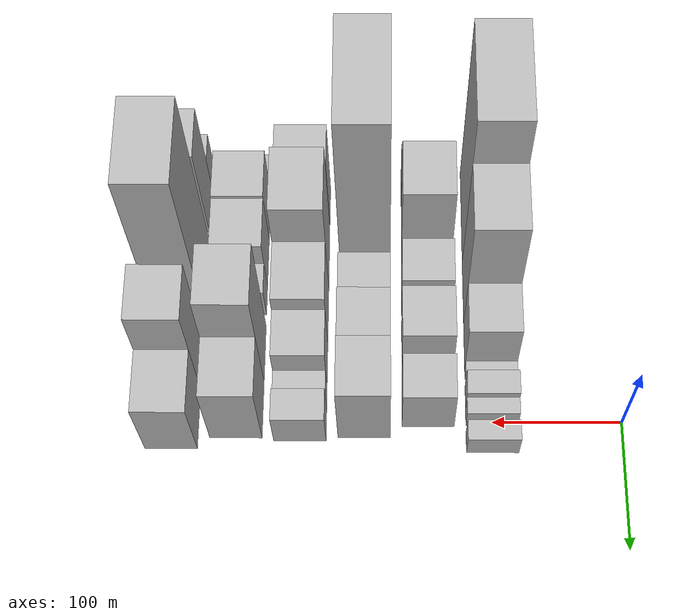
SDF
<sdf version="1.6">
 <world name="default">
  <model name="building_19">
   <static>1</static>
   <pose>100.0000 -177.3380 0 0.000000 0.000000 0.000000</pose>
   <link name="link">
    <pose>0 0 109.50 0 0 0</pose>
    <collision name="collision"><geometry><box><size>40.0000 82.8162 219.0000</size></box></geometry></collision>
    <visual name="visual">
     <cast_shadows>0</cast_shadows>
     <geometry><box><size>40.0000 82.8162 219.0000</size></box></geometry>
     <material>
      <script>
       <uri>model://HANNAS_wall/materials/scripts</uri>
       <uri>model://HANNAS_wall/materials/textures</uri>
       <name>vrc/HANNAS_wall</name>
      </script>
     </material>
    </visual>
   </link>
  </model>
  <model name="building_20">
   <static>1</static>
   <pose>100.0000 -109.4534 0 0.000000 0.000000 0.000000</pose>
   <link name="link">
    <pose>0 0 81.00 0 0 0</pose>
    <collision name="collision"><geometry><box><size>40.0000 52.9530 162.0000</size></box></geometry></collision>
    <visual name="visual">
     <cast_shadows>0</cast_shadows>
     <geometry><box><size>40.0000 52.9530 162.0000</size></box></geometry>
     <material>
      <script>
       <uri>model://HANNAS_wall/materials/scripts</uri>
       <uri>model://HANNAS_wall/materials/textures</uri>
       <name>vrc/HANNAS_wall</name>
      </script>
     </material>
    </visual>
   </link>
  </model>
  <model name="building_21">
   <static>1</static>
   <pose>100.0000 -63.3266 0 0.000000 0.000000 0.000000</pose>
   <link name="link">
    <pose>0 0 37.50 0 0 0</pose>
    <collision name="collision"><geometry><box><size>40.0000 39.3005 75.0000</size></box></geometry></collision>
    <visual name="visual">
     <cast_shadows>0</cast_shadows>
     <geometry><box><size>40.0000 39.3005 75.0000</size></box></geometry>
     <material>
      <script>
       <uri>model://HANNAS_wall/materials/scripts</uri>
       <uri>model://HANNAS_wall/materials/textures</uri>
       <name>vrc/HANNAS_wall</name>
      </script>
     </material>
    </visual>
   </link>
  </model>
  <model name="building_22">
   <static>1</static>
   <pose>100.0000 -39.4577 0 0.000000 0.000000 0.000000</pose>
   <link name="link">
    <pose>0 0 9.00 0 0 0</pose>
    <collision name="collision"><geometry><box><size>40.0000 8.4373 18.0000</size></box></geometry></collision>
    <visual name="visual">
     <cast_shadows>0</cast_shadows>
     <geometry><box><size>40.0000 8.4373 18.0000</size></box></geometry>
     <material>
      <script>
       <uri>model://HANNAS_wall/materials/scripts</uri>
       <uri>model://HANNAS_wall/materials/textures</uri>
       <name>vrc/HANNAS_wall</name>
      </script>
     </material>
    </visual>
   </link>
  </model>
  <model name="building_23">
   <static>1</static>
   <pose>100.0000 -19.8759 0 0.000000 0.000000 0.000000</pose>
   <link name="link">
    <pose>0 0 18.00 0 0 0</pose>
    <collision name="collision"><geometry><box><size>40.0000 18.7263 36.0000</size></box></geometry></collision>
    <visual name="visual">
     <cast_shadows>0</cast_shadows>
     <geometry><box><size>40.0000 18.7263 36.0000</size></box></geometry>
     <material>
      <script>
       <uri>model://HANNAS_wall/materials/scripts</uri>
       <uri>model://HANNAS_wall/materials/textures</uri>
       <name>vrc/HANNAS_wall</name>
      </script>
     </material>
    </visual>
   </link>
  </model>
  <model name="building_24">
   <static>1</static>
   <pose>100.0000 -4.0476 0 0.000000 0.000000 0.000000</pose>
   <link name="link">
    <pose>0 0 13.50 0 0 0</pose>
    <collision name="collision"><geometry><box><size>40.0000 12.9304 27.0000</size></box></geometry></collision>
    <visual name="visual">
     <cast_shadows>0</cast_shadows>
     <geometry><box><size>40.0000 12.9304 27.0000</size></box></geometry>
     <material>
      <script>
       <uri>model://HANNAS_wall/materials/scripts</uri>
       <uri>model://HANNAS_wall/materials/textures</uri>
       <name>vrc/HANNAS_wall</name>
      </script>
     </material>
    </visual>
   </link>
  </model>
  <model name="building_25">
   <static>1</static>
   <pose>100.0000 16.3489 0 0.000000 0.000000 0.000000</pose>
   <link name="link">
    <pose>0 0 15.00 0 0 0</pose>
    <collision name="collision"><geometry><box><size>40.0000 15.8626 30.0000</size></box></geometry></collision>
    <visual name="visual">
     <cast_shadows>0</cast_shadows>
     <geometry><box><size>40.0000 15.8626 30.0000</size></box></geometry>
     <material>
      <script>
       <uri>model://HANNAS_wall/materials/scripts</uri>
       <uri>model://HANNAS_wall/materials/textures</uri>
       <name>vrc/HANNAS_wall</name>
      </script>
     </material>
    </visual>
   </link>
  </model>
  <model name="building_69">
   <static>1</static>
   <pose>149.0000 -201.3836 0 0.000000 0.000000 0.000000</pose>
   <link name="link">
    <pose>0 0 25.50 0 0 0</pose>
    <collision name="collision"><geometry><box><size>40.0000 29.7481 51.0000</size></box></geometry></collision>
    <visual name="visual">
     <cast_shadows>0</cast_shadows>
     <geometry><box><size>40.0000 29.7481 51.0000</size></box></geometry>
     <material>
      <script>
       <uri>model://HANNAS_wall/materials/scripts</uri>
       <uri>model://HANNAS_wall/materials/textures</uri>
       <name>vrc/HANNAS_wall</name>
      </script>
     </material>
    </visual>
   </link>
  </model>
  <model name="building_70">
   <static>1</static>
   <pose>149.0000 -157.8084 0 0.000000 0.000000 0.000000</pose>
   <link name="link">
    <pose>0 0 58.50 0 0 0</pose>
    <collision name="collision"><geometry><box><size>40.0000 45.4023 117.0000</size></box></geometry></collision>
    <visual name="visual">
     <cast_shadows>0</cast_shadows>
     <geometry><box><size>40.0000 45.4023 117.0000</size></box></geometry>
     <material>
      <script>
       <uri>model://HANNAS_wall/materials/scripts</uri>
       <uri>model://HANNAS_wall/materials/textures</uri>
       <name>vrc/HANNAS_wall</name>
      </script>
     </material>
    </visual>
   </link>
  </model>
  <model name="building_71">
   <static>1</static>
   <pose>149.0000 -107.3944 0 0.000000 0.000000 0.000000</pose>
   <link name="link">
    <pose>0 0 33.00 0 0 0</pose>
    <collision name="collision"><geometry><box><size>40.0000 35.4257 66.0000</size></box></geometry></collision>
    <visual name="visual">
     <cast_shadows>0</cast_shadows>
     <geometry><box><size>40.0000 35.4257 66.0000</size></box></geometry>
     <material>
      <script>
       <uri>model://HANNAS_wall/materials/scripts</uri>
       <uri>model://HANNAS_wall/materials/textures</uri>
       <name>vrc/HANNAS_wall</name>
      </script>
     </material>
    </visual>
   </link>
  </model>
  <model name="building_72">
   <static>1</static>
   <pose>149.0000 -62.2759 0 0.000000 0.000000 0.000000</pose>
   <link name="link">
    <pose>0 0 36.00 0 0 0</pose>
    <collision name="collision"><geometry><box><size>40.0000 40.8113 72.0000</size></box></geometry></collision>
    <visual name="visual">
     <cast_shadows>0</cast_shadows>
     <geometry><box><size>40.0000 40.8113 72.0000</size></box></geometry>
     <material>
      <script>
       <uri>model://HANNAS_wall/materials/scripts</uri>
       <uri>model://HANNAS_wall/materials/textures</uri>
       <name>vrc/HANNAS_wall</name>
      </script>
     </material>
    </visual>
   </link>
  </model>
  <model name="building_73">
   <static>1</static>
   <pose>149.0000 -38.1605 0 0.000000 0.000000 0.000000</pose>
   <link name="link">
    <pose>0 0 7.50 0 0 0</pose>
    <collision name="collision"><geometry><box><size>40.0000 7.4195 15.0000</size></box></geometry></collision>
    <visual name="visual">
     <cast_shadows>0</cast_shadows>
     <geometry><box><size>40.0000 7.4195 15.0000</size></box></geometry>
     <material>
      <script>
       <uri>model://HANNAS_wall/materials/scripts</uri>
       <uri>model://HANNAS_wall/materials/textures</uri>
       <name>vrc/HANNAS_wall</name>
      </script>
     </material>
    </visual>
   </link>
  </model>
  <model name="building_74">
   <static>1</static>
   <pose>149.0000 -14.0762 0 0.000000 0.000000 0.000000</pose>
   <link name="link">
    <pose>0 0 31.50 0 0 0</pose>
    <collision name="collision"><geometry><box><size>40.0000 34.7492 63.0000</size></box></geometry></collision>
    <visual name="visual">
     <cast_shadows>0</cast_shadows>
     <geometry><box><size>40.0000 34.7492 63.0000</size></box></geometry>
     <material>
      <script>
       <uri>model://HANNAS_wall/materials/scripts</uri>
       <uri>model://HANNAS_wall/materials/textures</uri>
       <name>vrc/HANNAS_wall</name>
      </script>
     </material>
    </visual>
   </link>
  </model>
  <model name="building_117">
   <static>1</static>
   <pose>198.0000 -174.2746 0 0.000000 0.000000 0.000000</pose>
   <link name="link">
    <pose>0 0 112.50 0 0 0</pose>
    <collision name="collision"><geometry><box><size>40.0000 89.0194 225.0000</size></box></geometry></collision>
    <visual name="visual">
     <cast_shadows>0</cast_shadows>
     <geometry><box><size>40.0000 89.0194 225.0000</size></box></geometry>
     <material>
      <script>
       <uri>model://HANNAS_wall/materials/scripts</uri>
       <uri>model://HANNAS_wall/materials/textures</uri>
       <name>vrc/HANNAS_wall</name>
      </script>
     </material>
    </visual>
   </link>
  </model>
  <model name="building_118">
   <static>1</static>
   <pose>198.0000 -116.8831 0 0.000000 0.000000 0.000000</pose>
   <link name="link">
    <pose>0 0 10.50 0 0 0</pose>
    <collision name="collision"><geometry><box><size>40.0000 9.7635 21.0000</size></box></geometry></collision>
    <visual name="visual">
     <cast_shadows>0</cast_shadows>
     <geometry><box><size>40.0000 9.7635 21.0000</size></box></geometry>
     <material>
      <script>
       <uri>model://HANNAS_wall/materials/scripts</uri>
       <uri>model://HANNAS_wall/materials/textures</uri>
       <name>vrc/HANNAS_wall</name>
      </script>
     </material>
    </visual>
   </link>
  </model>
  <model name="building_119">
   <static>1</static>
   <pose>198.0000 -94.6599 0 0.000000 0.000000 0.000000</pose>
   <link name="link">
    <pose>0 0 34.50 0 0 0</pose>
    <collision name="collision"><geometry><box><size>40.0000 34.6830 69.0000</size></box></geometry></collision>
    <visual name="visual">
     <cast_shadows>0</cast_shadows>
     <geometry><box><size>40.0000 34.6830 69.0000</size></box></geometry>
     <material>
      <script>
       <uri>model://HANNAS_wall/materials/scripts</uri>
       <uri>model://HANNAS_wall/materials/textures</uri>
       <name>vrc/HANNAS_wall</name>
      </script>
     </material>
    </visual>
   </link>
  </model>
  <model name="building_120">
   <static>1</static>
   <pose>198.0000 -56.0234 0 0.000000 0.000000 0.000000</pose>
   <link name="link">
    <pose>0 0 40.50 0 0 0</pose>
    <collision name="collision"><geometry><box><size>40.0000 42.5899 81.0000</size></box></geometry></collision>
    <visual name="visual">
     <cast_shadows>0</cast_shadows>
     <geometry><box><size>40.0000 42.5899 81.0000</size></box></geometry>
     <material>
      <script>
       <uri>model://HANNAS_wall/materials/scripts</uri>
       <uri>model://HANNAS_wall/materials/textures</uri>
       <name>vrc/HANNAS_wall</name>
      </script>
     </material>
    </visual>
   </link>
  </model>
  <model name="building_121">
   <static>1</static>
   <pose>198.0000 -11.2413 0 0.000000 0.000000 0.000000</pose>
   <link name="link">
    <pose>0 0 45.00 0 0 0</pose>
    <collision name="collision"><geometry><box><size>40.0000 46.9743 90.0000</size></box></geometry></collision>
    <visual name="visual">
     <cast_shadows>0</cast_shadows>
     <geometry><box><size>40.0000 46.9743 90.0000</size></box></geometry>
     <material>
      <script>
       <uri>model://HANNAS_wall/materials/scripts</uri>
       <uri>model://HANNAS_wall/materials/textures</uri>
       <name>vrc/HANNAS_wall</name>
      </script>
     </material>
    </visual>
   </link>
  </model>
  <model name="building_163">
   <static>1</static>
   <pose>247.0000 -186.8509 0 0.000000 0.000000 0.000000</pose>
   <link name="link">
    <pose>0 0 51.00 0 0 0</pose>
    <collision name="collision"><geometry><box><size>40.0000 34.0231 102.0000</size></box></geometry></collision>
    <visual name="visual">
     <cast_shadows>0</cast_shadows>
     <geometry><box><size>40.0000 34.0231 102.0000</size></box></geometry>
     <material>
      <script>
       <uri>model://HANNAS_wall/materials/scripts</uri>
       <uri>model://HANNAS_wall/materials/textures</uri>
       <name>vrc/HANNAS_wall</name>
      </script>
     </material>
    </visual>
   </link>
  </model>
  <model name="building_164">
   <static>1</static>
   <pose>247.0000 -139.0201 0 0.000000 0.000000 0.000000</pose>
   <link name="link">
    <pose>0 0 67.50 0 0 0</pose>
    <collision name="collision"><geometry><box><size>40.0000 51.6385 135.0000</size></box></geometry></collision>
    <visual name="visual">
     <cast_shadows>0</cast_shadows>
     <geometry><box><size>40.0000 51.6385 135.0000</size></box></geometry>
     <material>
      <script>
       <uri>model://HANNAS_wall/materials/scripts</uri>
       <uri>model://HANNAS_wall/materials/textures</uri>
       <name>vrc/HANNAS_wall</name>
      </script>
     </material>
    </visual>
   </link>
  </model>
  <model name="building_165">
   <static>1</static>
   <pose>247.0000 -89.4596 0 0.000000 0.000000 0.000000</pose>
   <link name="link">
    <pose>0 0 42.00 0 0 0</pose>
    <collision name="collision"><geometry><box><size>40.0000 47.4825 84.0000</size></box></geometry></collision>
    <visual name="visual">
     <cast_shadows>0</cast_shadows>
     <geometry><box><size>40.0000 47.4825 84.0000</size></box></geometry>
     <material>
      <script>
       <uri>model://HANNAS_wall/materials/scripts</uri>
       <uri>model://HANNAS_wall/materials/textures</uri>
       <name>vrc/HANNAS_wall</name>
      </script>
     </material>
    </visual>
   </link>
  </model>
  <model name="building_166">
   <static>1</static>
   <pose>247.0000 -47.2180 0 0.000000 0.000000 0.000000</pose>
   <link name="link">
    <pose>0 0 33.00 0 0 0</pose>
    <collision name="collision"><geometry><box><size>40.0000 37.0007 66.0000</size></box></geometry></collision>
    <visual name="visual">
     <cast_shadows>0</cast_shadows>
     <geometry><box><size>40.0000 37.0007 66.0000</size></box></geometry>
     <material>
      <script>
       <uri>model://HANNAS_wall/materials/scripts</uri>
       <uri>model://HANNAS_wall/materials/textures</uri>
       <name>vrc/HANNAS_wall</name>
      </script>
     </material>
    </visual>
   </link>
  </model>
  <model name="building_167">
   <static>1</static>
   <pose>247.0000 -19.2278 0 0.000000 0.000000 0.000000</pose>
   <link name="link">
    <pose>0 0 18.00 0 0 0</pose>
    <collision name="collision"><geometry><box><size>40.0000 18.9798 36.0000</size></box></geometry></collision>
    <visual name="visual">
     <cast_shadows>0</cast_shadows>
     <geometry><box><size>40.0000 18.9798 36.0000</size></box></geometry>
     <material>
      <script>
       <uri>model://HANNAS_wall/materials/scripts</uri>
       <uri>model://HANNAS_wall/materials/textures</uri>
       <name>vrc/HANNAS_wall</name>
      </script>
     </material>
    </visual>
   </link>
  </model>
  <model name="building_168">
   <static>1</static>
   <pose>247.0000 2.7058 0 0.000000 0.000000 0.000000</pose>
   <link name="link">
    <pose>0 0 24.00 0 0 0</pose>
    <collision name="collision"><geometry><box><size>40.0000 24.8875 48.0000</size></box></geometry></collision>
    <visual name="visual">
     <cast_shadows>0</cast_shadows>
     <geometry><box><size>40.0000 24.8875 48.0000</size></box></geometry>
     <material>
      <script>
       <uri>model://HANNAS_wall/materials/scripts</uri>
       <uri>model://HANNAS_wall/materials/textures</uri>
       <name>vrc/HANNAS_wall</name>
      </script>
     </material>
    </visual>
   </link>
  </model>
  <model name="building_210">
   <static>1</static>
   <pose>296.0000 -210.5169 0 0.000000 0.000000 0.000000</pose>
   <link name="link">
    <pose>0 0 15.00 0 0 0</pose>
    <collision name="collision"><geometry><box><size>40.0000 16.1492 30.0000</size></box></geometry></collision>
    <visual name="visual">
     <cast_shadows>0</cast_shadows>
     <geometry><box><size>40.0000 16.1492 30.0000</size></box></geometry>
     <material>
      <script>
       <uri>model://HANNAS_wall/materials/scripts</uri>
       <uri>model://HANNAS_wall/materials/textures</uri>
       <name>vrc/HANNAS_wall</name>
      </script>
     </material>
    </visual>
   </link>
  </model>
  <model name="building_211">
   <static>1</static>
   <pose>296.0000 -176.3561 0 0.000000 0.000000 0.000000</pose>
   <link name="link">
    <pose>0 0 37.50 0 0 0</pose>
    <collision name="collision"><geometry><box><size>40.0000 40.1725 75.0000</size></box></geometry></collision>
    <visual name="visual">
     <cast_shadows>0</cast_shadows>
     <geometry><box><size>40.0000 40.1725 75.0000</size></box></geometry>
     <material>
      <script>
       <uri>model://HANNAS_wall/materials/scripts</uri>
       <uri>model://HANNAS_wall/materials/textures</uri>
       <name>vrc/HANNAS_wall</name>
      </script>
     </material>
    </visual>
   </link>
  </model>
  <model name="building_212">
   <static>1</static>
   <pose>296.0000 -135.5810 0 0.000000 0.000000 0.000000</pose>
   <link name="link">
    <pose>0 0 36.00 0 0 0</pose>
    <collision name="collision"><geometry><box><size>40.0000 41.3775 72.0000</size></box></geometry></collision>
    <visual name="visual">
     <cast_shadows>0</cast_shadows>
     <geometry><box><size>40.0000 41.3775 72.0000</size></box></geometry>
     <material>
      <script>
       <uri>model://HANNAS_wall/materials/scripts</uri>
       <uri>model://HANNAS_wall/materials/textures</uri>
       <name>vrc/HANNAS_wall</name>
      </script>
     </material>
    </visual>
   </link>
  </model>
  <model name="building_213">
   <static>1</static>
   <pose>296.0000 -102.4701 0 0.000000 0.000000 0.000000</pose>
   <link name="link">
    <pose>0 0 21.00 0 0 0</pose>
    <collision name="collision"><geometry><box><size>40.0000 24.8443 42.0000</size></box></geometry></collision>
    <visual name="visual">
     <cast_shadows>0</cast_shadows>
     <geometry><box><size>40.0000 24.8443 42.0000</size></box></geometry>
     <material>
      <script>
       <uri>model://HANNAS_wall/materials/scripts</uri>
       <uri>model://HANNAS_wall/materials/textures</uri>
       <name>vrc/HANNAS_wall</name>
      </script>
     </material>
    </visual>
   </link>
  </model>
  <model name="building_214">
   <static>1</static>
   <pose>296.0000 -56.5629 0 0.000000 0.000000 0.000000</pose>
   <link name="link">
    <pose>0 0 73.50 0 0 0</pose>
    <collision name="collision"><geometry><box><size>40.0000 46.9701 147.0000</size></box></geometry></collision>
    <visual name="visual">
     <cast_shadows>0</cast_shadows>
     <geometry><box><size>40.0000 46.9701 147.0000</size></box></geometry>
     <material>
      <script>
       <uri>model://HANNAS_wall/materials/scripts</uri>
       <uri>model://HANNAS_wall/materials/textures</uri>
       <name>vrc/HANNAS_wall</name>
      </script>
     </material>
    </visual>
   </link>
  </model>
  <model name="building_215">
   <static>1</static>
   <pose>296.0000 -10.2261 0 0.000000 0.000000 0.000000</pose>
   <link name="link">
    <pose>0 0 45.00 0 0 0</pose>
    <collision name="collision"><geometry><box><size>40.0000 45.7035 90.0000</size></box></geometry></collision>
    <visual name="visual">
     <cast_shadows>0</cast_shadows>
     <geometry><box><size>40.0000 45.7035 90.0000</size></box></geometry>
     <material>
      <script>
       <uri>model://HANNAS_wall/materials/scripts</uri>
       <uri>model://HANNAS_wall/materials/textures</uri>
       <name>vrc/HANNAS_wall</name>
      </script>
     </material>
    </visual>
   </link>
  </model>
  <model name="building_260">
   <static>1</static>
   <pose>345.0000 -216.8034 0 0.000000 0.000000 0.000000</pose>
   <link name="link">
    <pose>0 0 22.50 0 0 0</pose>
    <collision name="collision"><geometry><box><size>40.0000 23.6490 45.0000</size></box></geometry></collision>
    <visual name="visual">
     <cast_shadows>0</cast_shadows>
     <geometry><box><size>40.0000 23.6490 45.0000</size></box></geometry>
     <material>
      <script>
       <uri>model://HANNAS_wall/materials/scripts</uri>
       <uri>model://HANNAS_wall/materials/textures</uri>
       <name>vrc/HANNAS_wall</name>
      </script>
     </material>
    </visual>
   </link>
  </model>
  <model name="building_261">
   <static>1</static>
   <pose>345.0000 -184.2324 0 0.000000 0.000000 0.000000</pose>
   <link name="link">
    <pose>0 0 61.50 0 0 0</pose>
    <collision name="collision"><geometry><box><size>40.0000 41.4931 123.0000</size></box></geometry></collision>
    <visual name="visual">
     <cast_shadows>0</cast_shadows>
     <geometry><box><size>40.0000 41.4931 123.0000</size></box></geometry>
     <material>
      <script>
       <uri>model://HANNAS_wall/materials/scripts</uri>
       <uri>model://HANNAS_wall/materials/textures</uri>
       <name>vrc/HANNAS_wall</name>
      </script>
     </material>
    </visual>
   </link>
  </model>
  <model name="building_262">
   <static>1</static>
   <pose>345.0000 -123.3906 0 0.000000 0.000000 0.000000</pose>
   <link name="link">
    <pose>0 0 108.00 0 0 0</pose>
    <collision name="collision"><geometry><box><size>40.0000 68.1905 216.0000</size></box></geometry></collision>
    <visual name="visual">
     <cast_shadows>0</cast_shadows>
     <geometry><box><size>40.0000 68.1905 216.0000</size></box></geometry>
     <material>
      <script>
       <uri>model://HANNAS_wall/materials/scripts</uri>
       <uri>model://HANNAS_wall/materials/textures</uri>
       <name>vrc/HANNAS_wall</name>
      </script>
     </material>
    </visual>
   </link>
  </model>
  <model name="building_263">
   <static>1</static>
   <pose>345.0000 -84.8855 0 0.000000 0.000000 0.000000</pose>
   <link name="link">
    <pose>0 0 10.50 0 0 0</pose>
    <collision name="collision"><geometry><box><size>40.0000 8.8198 21.0000</size></box></geometry></collision>
    <visual name="visual">
     <cast_shadows>0</cast_shadows>
     <geometry><box><size>40.0000 8.8198 21.0000</size></box></geometry>
     <material>
      <script>
       <uri>model://HANNAS_wall/materials/scripts</uri>
       <uri>model://HANNAS_wall/materials/textures</uri>
       <name>vrc/HANNAS_wall</name>
      </script>
     </material>
    </visual>
   </link>
  </model>
  <model name="building_264">
   <static>1</static>
   <pose>345.0000 -75.0549 0 0.000000 0.000000 0.000000</pose>
   <link name="link">
    <pose>0 0 12.00 0 0 0</pose>
    <collision name="collision"><geometry><box><size>40.0000 10.8413 24.0000</size></box></geometry></collision>
    <visual name="visual">
     <cast_shadows>0</cast_shadows>
     <geometry><box><size>40.0000 10.8413 24.0000</size></box></geometry>
     <material>
      <script>
       <uri>model://HANNAS_wall/materials/scripts</uri>
       <uri>model://HANNAS_wall/materials/textures</uri>
       <name>vrc/HANNAS_wall</name>
      </script>
     </material>
    </visual>
   </link>
  </model>
  <model name="building_265">
   <static>1</static>
   <pose>345.0000 -48.3974 0 0.000000 0.000000 0.000000</pose>
   <link name="link">
    <pose>0 0 67.50 0 0 0</pose>
    <collision name="collision"><geometry><box><size>40.0000 42.4737 135.0000</size></box></geometry></collision>
    <visual name="visual">
     <cast_shadows>0</cast_shadows>
     <geometry><box><size>40.0000 42.4737 135.0000</size></box></geometry>
     <material>
      <script>
       <uri>model://HANNAS_wall/materials/scripts</uri>
       <uri>model://HANNAS_wall/materials/textures</uri>
       <name>vrc/HANNAS_wall</name>
      </script>
     </material>
    </visual>
   </link>
  </model>
  <model name="building_266">
   <static>1</static>
   <pose>345.0000 -2.9768 0 0.000000 0.000000 0.000000</pose>
   <link name="link">
    <pose>0 0 40.50 0 0 0</pose>
    <collision name="collision"><geometry><box><size>40.0000 48.3674 81.0000</size></box></geometry></collision>
    <visual name="visual">
     <cast_shadows>0</cast_shadows>
     <geometry><box><size>40.0000 48.3674 81.0000</size></box></geometry>
     <material>
      <script>
       <uri>model://HANNAS_wall/materials/scripts</uri>
       <uri>model://HANNAS_wall/materials/textures</uri>
       <name>vrc/HANNAS_wall</name>
      </script>
     </material>
    </visual>
   </link>
  </model>
 </world>
</sdf>
